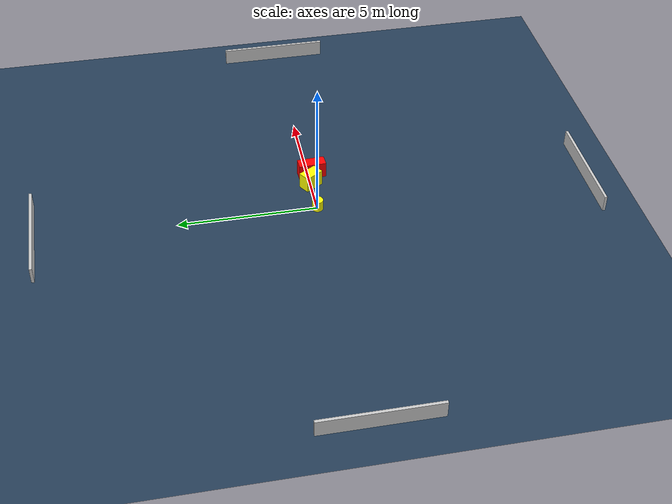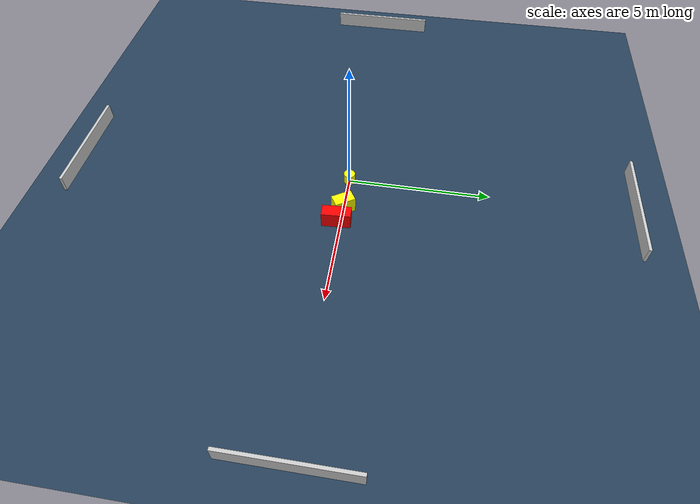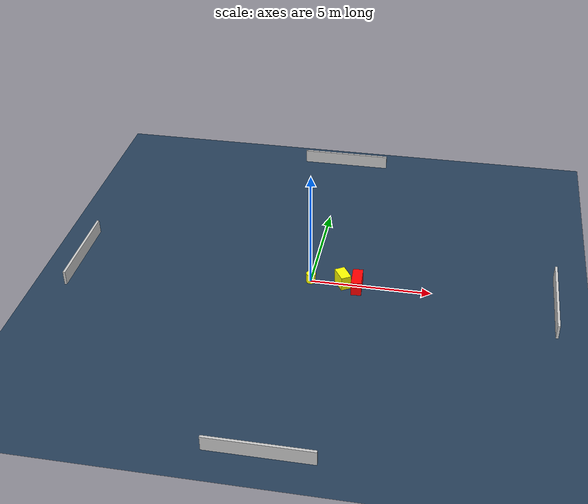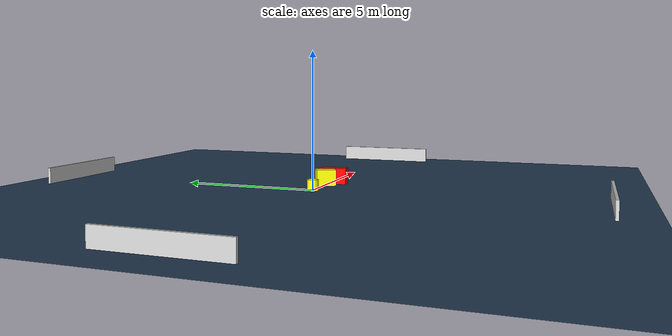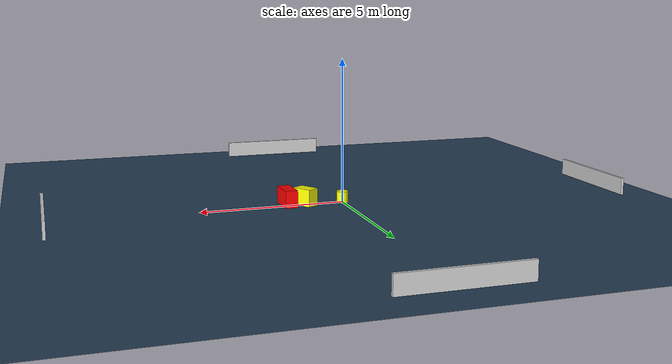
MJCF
<?xml version="1.0" ?>
<mujoco model="generated_environment">
  <option timestep="0.01" integrator="RK4" cone="elliptic"/>
  <default>
    <geom density="1"/>
  </default>
  <asset>
    <texture builtin="gradient" height="3072" name="skybox" rgb1="0.3 0.5 0.7" rgb2="0 0 0" type="skybox" width="512"/>
    <texture builtin="checker" height="300" name="groundplane" rgb1="0.2 0.3 0.4" rgb2="0.1 0.2 0.3" type="2d" width="300"/>
    <material name="groundplane" reflectance="0.2" texrepeat="5 5" texture="groundplane"/>
  </asset>
  <worldbody>
    <light dir="0 0 -1" directional="true" pos="0 0 1.5"/>
    <geom condim="3" friction="0.5 0.005 0.001" material="groundplane" name="floor" pos="0 0 0" size="0 0 0.05" type="plane"/>
    <body name="walls">
      <geom name="wall_1" condim="4" pos="-10.0 0.0 0.3" rgba="0.800000011920929 0.800000011920929 0.800000011920929 1.0" size="0.05 2.0 0.3" type="box"/>
      <geom name="wall_2" condim="4" pos="10.0 0.0 0.3" rgba="0.800000011920929 0.800000011920929 0.800000011920929 1.0" size="0.05 2.0 0.3" type="box"/>
      <geom name="wall_3" condim="4" pos="0.0 -10.0 0.3" rgba="0.800000011920929 0.800000011920929 0.800000011920929 1.0" size="2.0 0.05 0.3" type="box"/>
      <geom name="wall_4" condim="4" pos="0.0 10.0 0.3" rgba="0.800000011920929 0.800000011920929 0.800000011920929 1.0" size="2.0 0.05 0.3" type="box"/>
    </body>
    <body name="robot">
      <joint name="joint_x" type="slide" pos="0 0 0" axis="1 0 0"/>
      <joint name="joint_y" type="slide" pos="0 0 0" axis="0 1 0"/>
      <geom name="robot" type="cylinder" pos="0.0 0.0 0.2" size="0.2 0.2 0.0" mass="5.0" friction="1.0 0.005 0.0001" condim="4" rgba="1.0 1.0 0.0 1.0"/>
    </body>
    <body name="obstacle_1_movable">
      <geom name="obstacle_1_movable" condim="4" pos="1.3350123244271825 -0.006466718736549128 0.3" euler="0 0 121.8572268069134" friction="0.0 0.005 0.001" rgba="1.0 1.0 0.0 1.0" size="0.36213437672958704 0.21663999297192485 0.3" type="box" mass="0.1"/>
      <joint type="free"/>
    </body>
    <body name="obstacle_2_static">
      <geom name="obstacle_2_static" condim="4" pos="1.9444695021522034 -0.14379131341906676 0.3" euler="0 0 272.73243771708985" friction="0.0 0.005 0.001" rgba="1.0 0.0 0.0 1.0" size="0.49799301269281515 0.2131102964670032 0.3" type="box"/>
    </body>
  </worldbody>
  <actuator>
    <motor name="actuator_x" joint="joint_x" gear="1" ctrlrange="-1 1"/>
    <motor name="actuator_y" joint="joint_y" gear="1" ctrlrange="-1 1"/>
  </actuator>
</mujoco>
